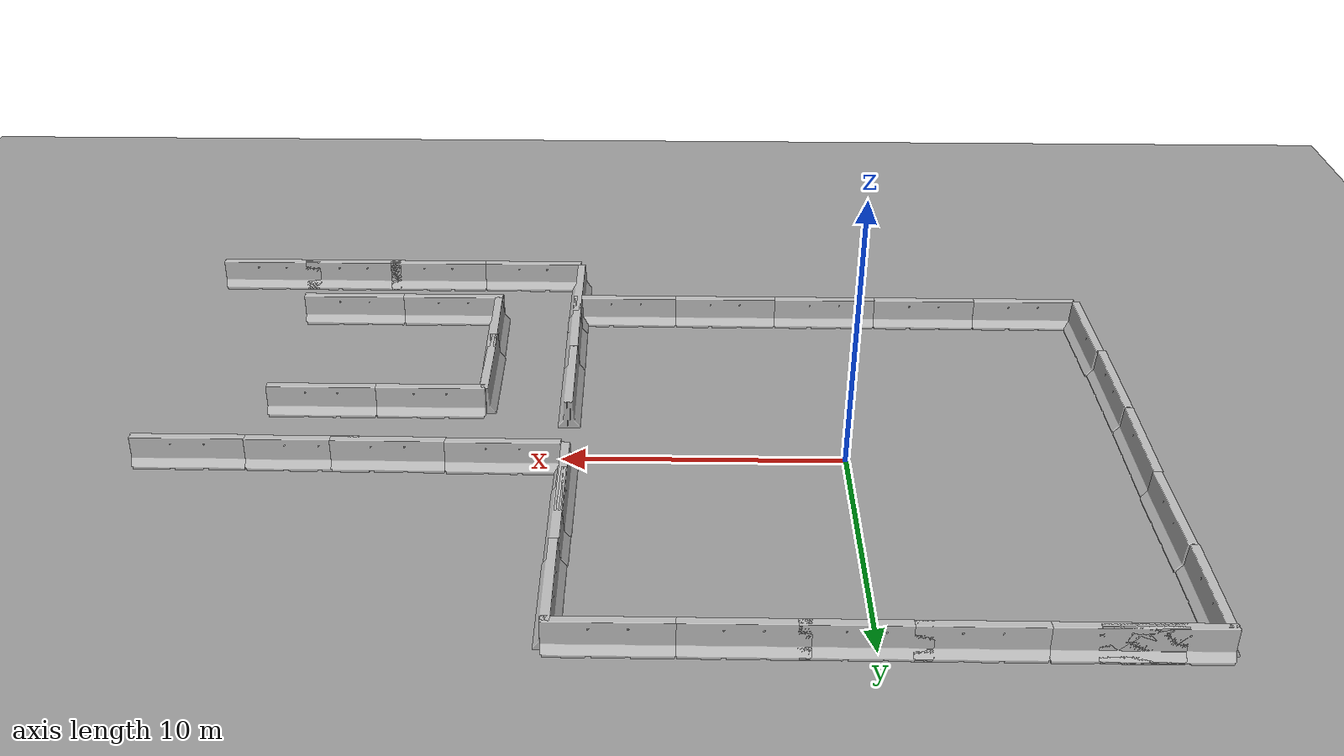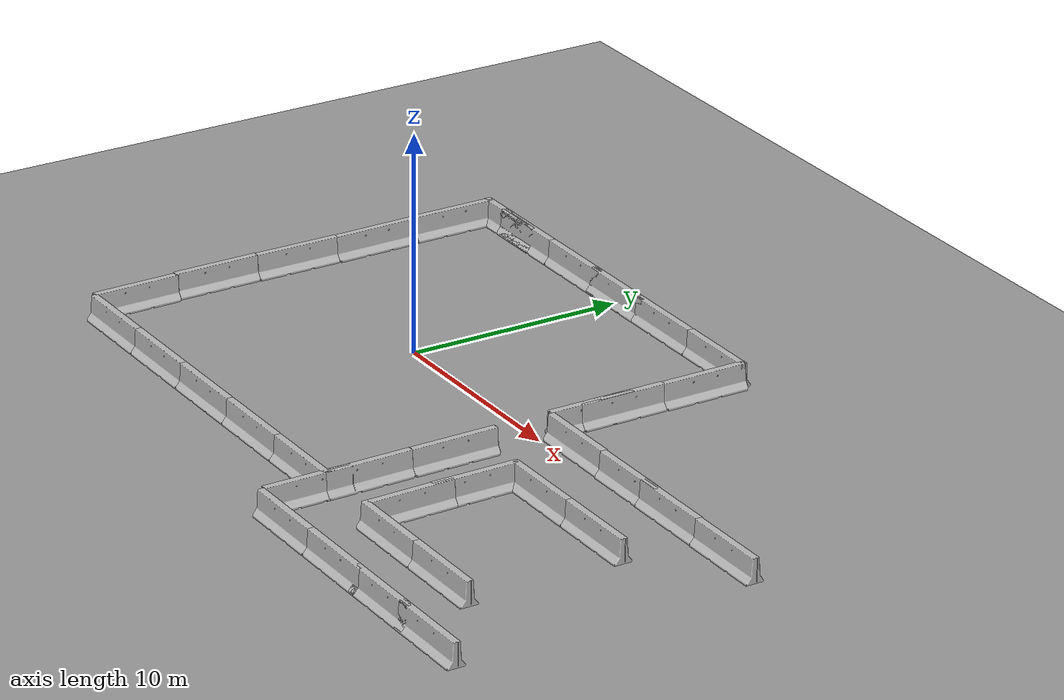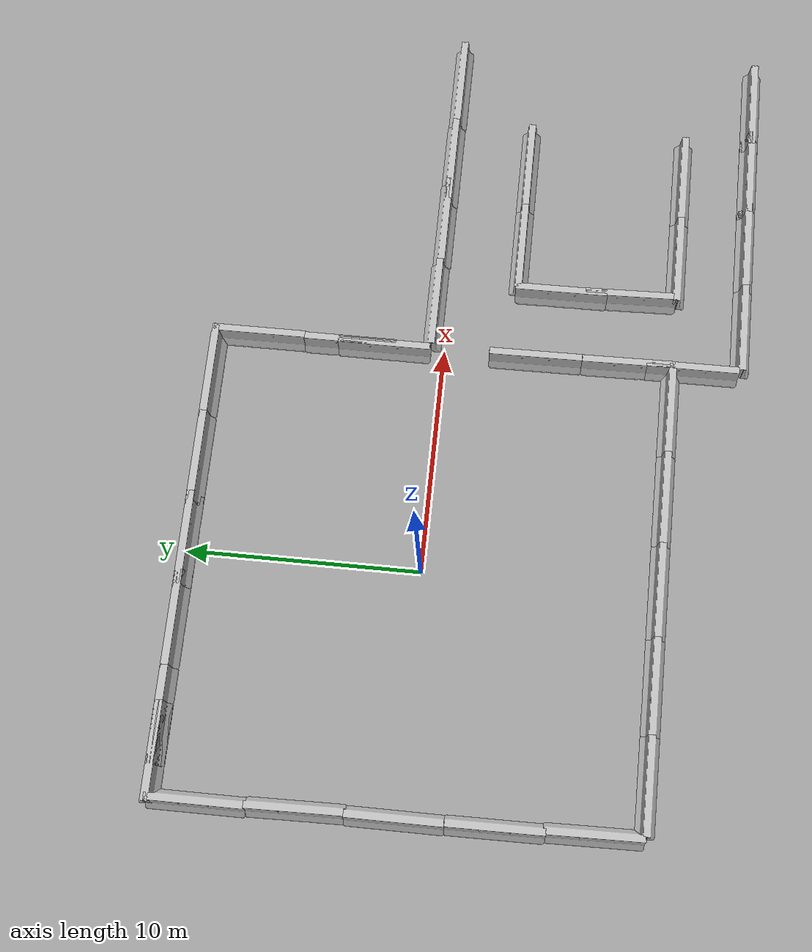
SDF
<sdf version="1.4">
 <world name="default">
  <model name="jersey_barrier">
   <static>1</static>
   <link name="link">
    <visual name="visual">
     <geometry><mesh><uri>model://jersey_barrier/meshes/jersey_barrier.dae</uri></mesh></geometry>
    </visual>
    <collision name="upright">
     <pose>0 0 0.5715 0 -0 0</pose>
     <geometry><box><size>4.06542 0.3063 1.143</size></box></geometry>
    </collision>
    <collision name="base">
     <pose>0 0 0.032258 0 -0 0</pose>
     <geometry><box><size>4.06542 0.8107 0.064516</size></box></geometry>
    </collision>
    <collision name="base2">
     <pose>0 0 0.1 0 -0 0</pose>
     <geometry><box><size>4.06542 0.65 0.1</size></box></geometry>
    </collision>
    <collision name="base3">
     <pose>0 0 0.2 0 -0 0</pose>
     <geometry><box><size>4.06542 0.5 0.1</size></box></geometry>
    </collision>
    <collision name="left-angle">
     <pose>0 -0.224 0.2401 0.9 -0 0</pose>
     <geometry><box><size>4.06542 0.5 0.064516</size></box></geometry>
    </collision>
    <collision name="right-angle">
     <pose>0 0.224 0.2401 -0.9 0 0</pose>
     <geometry><box><size>4.06542 0.5 0.064516</size></box></geometry>
    </collision>
    <velocity_decay><linear>0</linear><angular>0</angular></velocity_decay>
   </link>
   <pose>-10.1123 -7.95933 0 0 0 -1.55782</pose>
  </model>
  <model name="ground_plane_0">
   <static>1</static>
   <link name="link">
    <collision name="collision">
     <geometry><plane><normal>0 0 1</normal><size>100 100</size></plane></geometry>
     <surface><friction><ode><mu>100</mu><mu2>50</mu2></ode></friction></surface>
    </collision>
    <visual name="visual">
     <cast_shadows>0</cast_shadows>
     <geometry><plane><normal>0 0 1</normal><size>100 100</size></plane></geometry>
     <material>
      <script><uri>file://media/materials/scripts/gazebo.material</uri><name>Gazebo/Grey</name></script>
     </material>
    </visual>
    <velocity_decay><linear>0</linear><angular>0</angular></velocity_decay>
   </link>
   <pose>0.497681 0 0 0 -0 0</pose>
  </model>
  <model name="jersey_barrier_0">
   <static>1</static>
   <link name="link">
    <visual name="visual">
     <geometry><mesh><uri>model://jersey_barrier/meshes/jersey_barrier.dae</uri></mesh></geometry>
    </visual>
    <collision name="upright">
     <pose>0 0 0.5715 0 -0 0</pose>
     <geometry><box><size>4.06542 0.3063 1.143</size></box></geometry>
    </collision>
    <collision name="base">
     <pose>0 0 0.032258 0 -0 0</pose>
     <geometry><box><size>4.06542 0.8107 0.064516</size></box></geometry>
    </collision>
    <collision name="base2">
     <pose>0 0 0.1 0 -0 0</pose>
     <geometry><box><size>4.06542 0.65 0.1</size></box></geometry>
    </collision>
    <collision name="base3">
     <pose>0 0 0.2 0 -0 0</pose>
     <geometry><box><size>4.06542 0.5 0.1</size></box></geometry>
    </collision>
    <collision name="left-angle">
     <pose>0 -0.224 0.2401 0.9 -0 0</pose>
     <geometry><box><size>4.06542 0.5 0.064516</size></box></geometry>
    </collision>
    <collision name="right-angle">
     <pose>0 0.224 0.2401 -0.9 0 0</pose>
     <geometry><box><size>4.06542 0.5 0.064516</size></box></geometry>
    </collision>
    <velocity_decay><linear>0</linear><angular>0</angular></velocity_decay>
   </link>
   <pose>-10.2064 -3.99 0.02669 0 0 -1.56734</pose>
  </model>
  <model name="jersey_barrier_1">
   <static>1</static>
   <link name="link">
    <visual name="visual">
     <geometry><mesh><uri>model://jersey_barrier/meshes/jersey_barrier.dae</uri></mesh></geometry>
    </visual>
    <collision name="upright">
     <pose>0 0 0.5715 0 -0 0</pose>
     <geometry><box><size>4.06542 0.3063 1.143</size></box></geometry>
    </collision>
    <collision name="base">
     <pose>0 0 0.032258 0 -0 0</pose>
     <geometry><box><size>4.06542 0.8107 0.064516</size></box></geometry>
    </collision>
    <collision name="base2">
     <pose>0 0 0.1 0 -0 0</pose>
     <geometry><box><size>4.06542 0.65 0.1</size></box></geometry>
    </collision>
    <collision name="base3">
     <pose>0 0 0.2 0 -0 0</pose>
     <geometry><box><size>4.06542 0.5 0.1</size></box></geometry>
    </collision>
    <collision name="left-angle">
     <pose>0 -0.224 0.2401 0.9 -0 0</pose>
     <geometry><box><size>4.06542 0.5 0.064516</size></box></geometry>
    </collision>
    <collision name="right-angle">
     <pose>0 0.224 0.2401 -0.9 0 0</pose>
     <geometry><box><size>4.06542 0.5 0.064516</size></box></geometry>
    </collision>
    <velocity_decay><linear>0</linear><angular>0</angular></velocity_decay>
   </link>
   <pose>-10.2248 0.051346 0 0 0 -1.57545</pose>
  </model>
  <model name="jersey_barrier_2">
   <static>1</static>
   <link name="link">
    <visual name="visual">
     <geometry><mesh><uri>model://jersey_barrier/meshes/jersey_barrier.dae</uri></mesh></geometry>
    </visual>
    <collision name="upright">
     <pose>0 0 0.5715 0 -0 0</pose>
     <geometry><box><size>4.06542 0.3063 1.143</size></box></geometry>
    </collision>
    <collision name="base">
     <pose>0 0 0.032258 0 -0 0</pose>
     <geometry><box><size>4.06542 0.8107 0.064516</size></box></geometry>
    </collision>
    <collision name="base2">
     <pose>0 0 0.1 0 -0 0</pose>
     <geometry><box><size>4.06542 0.65 0.1</size></box></geometry>
    </collision>
    <collision name="base3">
     <pose>0 0 0.2 0 -0 0</pose>
     <geometry><box><size>4.06542 0.5 0.1</size></box></geometry>
    </collision>
    <collision name="left-angle">
     <pose>0 -0.224 0.2401 0.9 -0 0</pose>
     <geometry><box><size>4.06542 0.5 0.064516</size></box></geometry>
    </collision>
    <collision name="right-angle">
     <pose>0 0.224 0.2401 -0.9 0 0</pose>
     <geometry><box><size>4.06542 0.5 0.064516</size></box></geometry>
    </collision>
    <velocity_decay><linear>0</linear><angular>0</angular></velocity_decay>
   </link>
   <pose>-10.2081 4.04852 0 0 0 -1.55769</pose>
  </model>
  <model name="jersey_barrier_3">
   <static>1</static>
   <link name="link">
    <visual name="visual">
     <geometry><mesh><uri>model://jersey_barrier/meshes/jersey_barrier.dae</uri></mesh></geometry>
    </visual>
    <collision name="upright">
     <pose>0 0 0.5715 0 -0 0</pose>
     <geometry><box><size>4.06542 0.3063 1.143</size></box></geometry>
    </collision>
    <collision name="base">
     <pose>0 0 0.032258 0 -0 0</pose>
     <geometry><box><size>4.06542 0.8107 0.064516</size></box></geometry>
    </collision>
    <collision name="base2">
     <pose>0 0 0.1 0 -0 0</pose>
     <geometry><box><size>4.06542 0.65 0.1</size></box></geometry>
    </collision>
    <collision name="base3">
     <pose>0 0 0.2 0 -0 0</pose>
     <geometry><box><size>4.06542 0.5 0.1</size></box></geometry>
    </collision>
    <collision name="left-angle">
     <pose>0 -0.224 0.2401 0.9 -0 0</pose>
     <geometry><box><size>4.06542 0.5 0.064516</size></box></geometry>
    </collision>
    <collision name="right-angle">
     <pose>0 0.224 0.2401 -0.9 0 0</pose>
     <geometry><box><size>4.06542 0.5 0.064516</size></box></geometry>
    </collision>
    <velocity_decay><linear>0</linear><angular>0</angular></velocity_decay>
   </link>
   <pose>-10.2743 8.06249 0 0 -0 1.56778</pose>
  </model>
  <model name="jersey_barrier_4">
   <static>1</static>
   <link name="link">
    <visual name="visual">
     <geometry><mesh><uri>model://jersey_barrier/meshes/jersey_barrier.dae</uri></mesh></geometry>
    </visual>
    <collision name="upright">
     <pose>0 0 0.5715 0 -0 0</pose>
     <geometry><box><size>4.06542 0.3063 1.143</size></box></geometry>
    </collision>
    <collision name="base">
     <pose>0 0 0.032258 0 -0 0</pose>
     <geometry><box><size>4.06542 0.8107 0.064516</size></box></geometry>
    </collision>
    <collision name="base2">
     <pose>0 0 0.1 0 -0 0</pose>
     <geometry><box><size>4.06542 0.65 0.1</size></box></geometry>
    </collision>
    <collision name="base3">
     <pose>0 0 0.2 0 -0 0</pose>
     <geometry><box><size>4.06542 0.5 0.1</size></box></geometry>
    </collision>
    <collision name="left-angle">
     <pose>0 -0.224 0.2401 0.9 -0 0</pose>
     <geometry><box><size>4.06542 0.5 0.064516</size></box></geometry>
    </collision>
    <collision name="right-angle">
     <pose>0 0.224 0.2401 -0.9 0 0</pose>
     <geometry><box><size>4.06542 0.5 0.064516</size></box></geometry>
    </collision>
    <velocity_decay><linear>0</linear><angular>0</angular></velocity_decay>
   </link>
   <pose>-8 -10 0 0 -0 0</pose>
  </model>
  <model name="jersey_barrier_5">
   <static>1</static>
   <link name="link">
    <visual name="visual">
     <geometry><mesh><uri>model://jersey_barrier/meshes/jersey_barrier.dae</uri></mesh></geometry>
    </visual>
    <collision name="upright">
     <pose>0 0 0.5715 0 -0 0</pose>
     <geometry><box><size>4.06542 0.3063 1.143</size></box></geometry>
    </collision>
    <collision name="base">
     <pose>0 0 0.032258 0 -0 0</pose>
     <geometry><box><size>4.06542 0.8107 0.064516</size></box></geometry>
    </collision>
    <collision name="base2">
     <pose>0 0 0.1 0 -0 0</pose>
     <geometry><box><size>4.06542 0.65 0.1</size></box></geometry>
    </collision>
    <collision name="base3">
     <pose>0 0 0.2 0 -0 0</pose>
     <geometry><box><size>4.06542 0.5 0.1</size></box></geometry>
    </collision>
    <collision name="left-angle">
     <pose>0 -0.224 0.2401 0.9 -0 0</pose>
     <geometry><box><size>4.06542 0.5 0.064516</size></box></geometry>
    </collision>
    <collision name="right-angle">
     <pose>0 0.224 0.2401 -0.9 0 0</pose>
     <geometry><box><size>4.06542 0.5 0.064516</size></box></geometry>
    </collision>
    <velocity_decay><linear>0</linear><angular>0</angular></velocity_decay>
   </link>
   <pose>-4 -10 0 0 -0 0</pose>
  </model>
  <model name="jersey_barrier_6">
   <static>1</static>
   <link name="link">
    <visual name="visual">
     <geometry><mesh><uri>model://jersey_barrier/meshes/jersey_barrier.dae</uri></mesh></geometry>
    </visual>
    <collision name="upright">
     <pose>0 0 0.5715 0 -0 0</pose>
     <geometry><box><size>4.06542 0.3063 1.143</size></box></geometry>
    </collision>
    <collision name="base">
     <pose>0 0 0.032258 0 -0 0</pose>
     <geometry><box><size>4.06542 0.8107 0.064516</size></box></geometry>
    </collision>
    <collision name="base2">
     <pose>0 0 0.1 0 -0 0</pose>
     <geometry><box><size>4.06542 0.65 0.1</size></box></geometry>
    </collision>
    <collision name="base3">
     <pose>0 0 0.2 0 -0 0</pose>
     <geometry><box><size>4.06542 0.5 0.1</size></box></geometry>
    </collision>
    <collision name="left-angle">
     <pose>0 -0.224 0.2401 0.9 -0 0</pose>
     <geometry><box><size>4.06542 0.5 0.064516</size></box></geometry>
    </collision>
    <collision name="right-angle">
     <pose>0 0.224 0.2401 -0.9 0 0</pose>
     <geometry><box><size>4.06542 0.5 0.064516</size></box></geometry>
    </collision>
    <velocity_decay><linear>0</linear><angular>0</angular></velocity_decay>
   </link>
   <pose>0 -10 0 0 -0 0</pose>
  </model>
  <model name="jersey_barrier_7">
   <static>1</static>
   <link name="link">
    <visual name="visual">
     <geometry><mesh><uri>model://jersey_barrier/meshes/jersey_barrier.dae</uri></mesh></geometry>
    </visual>
    <collision name="upright">
     <pose>0 0 0.5715 0 -0 0</pose>
     <geometry><box><size>4.06542 0.3063 1.143</size></box></geometry>
    </collision>
    <collision name="base">
     <pose>0 0 0.032258 0 -0 0</pose>
     <geometry><box><size>4.06542 0.8107 0.064516</size></box></geometry>
    </collision>
    <collision name="base2">
     <pose>0 0 0.1 0 -0 0</pose>
     <geometry><box><size>4.06542 0.65 0.1</size></box></geometry>
    </collision>
    <collision name="base3">
     <pose>0 0 0.2 0 -0 0</pose>
     <geometry><box><size>4.06542 0.5 0.1</size></box></geometry>
    </collision>
    <collision name="left-angle">
     <pose>0 -0.224 0.2401 0.9 -0 0</pose>
     <geometry><box><size>4.06542 0.5 0.064516</size></box></geometry>
    </collision>
    <collision name="right-angle">
     <pose>0 0.224 0.2401 -0.9 0 0</pose>
     <geometry><box><size>4.06542 0.5 0.064516</size></box></geometry>
    </collision>
    <velocity_decay><linear>0</linear><angular>0</angular></velocity_decay>
   </link>
   <pose>4 -10 0 0 -0 0</pose>
  </model>
  <model name="jersey_barrier_8">
   <static>1</static>
   <link name="link">
    <visual name="visual">
     <geometry><mesh><uri>model://jersey_barrier/meshes/jersey_barrier.dae</uri></mesh></geometry>
    </visual>
    <collision name="upright">
     <pose>0 0 0.5715 0 -0 0</pose>
     <geometry><box><size>4.06542 0.3063 1.143</size></box></geometry>
    </collision>
    <collision name="base">
     <pose>0 0 0.032258 0 -0 0</pose>
     <geometry><box><size>4.06542 0.8107 0.064516</size></box></geometry>
    </collision>
    <collision name="base2">
     <pose>0 0 0.1 0 -0 0</pose>
     <geometry><box><size>4.06542 0.65 0.1</size></box></geometry>
    </collision>
    <collision name="base3">
     <pose>0 0 0.2 0 -0 0</pose>
     <geometry><box><size>4.06542 0.5 0.1</size></box></geometry>
    </collision>
    <collision name="left-angle">
     <pose>0 -0.224 0.2401 0.9 -0 0</pose>
     <geometry><box><size>4.06542 0.5 0.064516</size></box></geometry>
    </collision>
    <collision name="right-angle">
     <pose>0 0.224 0.2401 -0.9 0 0</pose>
     <geometry><box><size>4.06542 0.5 0.064516</size></box></geometry>
    </collision>
    <velocity_decay><linear>0</linear><angular>0</angular></velocity_decay>
   </link>
   <pose>8 -10 0 0 -0 0</pose>
  </model>
  <model name="jersey_barrier_9">
   <static>1</static>
   <link name="link">
    <visual name="visual">
     <geometry><mesh><uri>model://jersey_barrier/meshes/jersey_barrier.dae</uri></mesh></geometry>
    </visual>
    <collision name="upright">
     <pose>0 0 0.5715 0 -0 0</pose>
     <geometry><box><size>4.06542 0.3063 1.143</size></box></geometry>
    </collision>
    <collision name="base">
     <pose>0 0 0.032258 0 -0 0</pose>
     <geometry><box><size>4.06542 0.8107 0.064516</size></box></geometry>
    </collision>
    <collision name="base2">
     <pose>0 0 0.1 0 -0 0</pose>
     <geometry><box><size>4.06542 0.65 0.1</size></box></geometry>
    </collision>
    <collision name="base3">
     <pose>0 0 0.2 0 -0 0</pose>
     <geometry><box><size>4.06542 0.5 0.1</size></box></geometry>
    </collision>
    <collision name="left-angle">
     <pose>0 -0.224 0.2401 0.9 -0 0</pose>
     <geometry><box><size>4.06542 0.5 0.064516</size></box></geometry>
    </collision>
    <collision name="right-angle">
     <pose>0 0.224 0.2401 -0.9 0 0</pose>
     <geometry><box><size>4.06542 0.5 0.064516</size></box></geometry>
    </collision>
    <velocity_decay><linear>0</linear><angular>0</angular></velocity_decay>
   </link>
   <pose>9.92231 -8.06434 0 0 0 -1.55766</pose>
  </model>
  <model name="jersey_barrier_10">
   <static>1</static>
   <link name="link">
    <visual name="visual">
     <geometry><mesh><uri>model://jersey_barrier/meshes/jersey_barrier.dae</uri></mesh></geometry>
    </visual>
    <collision name="upright">
     <pose>0 0 0.5715 0 -0 0</pose>
     <geometry><box><size>4.06542 0.3063 1.143</size></box></geometry>
    </collision>
    <collision name="base">
     <pose>0 0 0.032258 0 -0 0</pose>
     <geometry><box><size>4.06542 0.8107 0.064516</size></box></geometry>
    </collision>
    <collision name="base2">
     <pose>0 0 0.1 0 -0 0</pose>
     <geometry><box><size>4.06542 0.65 0.1</size></box></geometry>
    </collision>
    <collision name="base3">
     <pose>0 0 0.2 0 -0 0</pose>
     <geometry><box><size>4.06542 0.5 0.1</size></box></geometry>
    </collision>
    <collision name="left-angle">
     <pose>0 -0.224 0.2401 0.9 -0 0</pose>
     <geometry><box><size>4.06542 0.5 0.064516</size></box></geometry>
    </collision>
    <collision name="right-angle">
     <pose>0 0.224 0.2401 -0.9 0 0</pose>
     <geometry><box><size>4.06542 0.5 0.064516</size></box></geometry>
    </collision>
    <velocity_decay><linear>0</linear><angular>0</angular></velocity_decay>
   </link>
   <pose>9.88698 -4.02592 0 0 -0 1.57868</pose>
  </model>
  <model name="jersey_barrier_11">
   <static>1</static>
   <link name="link">
    <visual name="visual">
     <geometry><mesh><uri>model://jersey_barrier/meshes/jersey_barrier.dae</uri></mesh></geometry>
    </visual>
    <collision name="upright">
     <pose>0 0 0.5715 0 -0 0</pose>
     <geometry><box><size>4.06542 0.3063 1.143</size></box></geometry>
    </collision>
    <collision name="base">
     <pose>0 0 0.032258 0 -0 0</pose>
     <geometry><box><size>4.06542 0.8107 0.064516</size></box></geometry>
    </collision>
    <collision name="base2">
     <pose>0 0 0.1 0 -0 0</pose>
     <geometry><box><size>4.06542 0.65 0.1</size></box></geometry>
    </collision>
    <collision name="base3">
     <pose>0 0 0.2 0 -0 0</pose>
     <geometry><box><size>4.06542 0.5 0.1</size></box></geometry>
    </collision>
    <collision name="left-angle">
     <pose>0 -0.224 0.2401 0.9 -0 0</pose>
     <geometry><box><size>4.06542 0.5 0.064516</size></box></geometry>
    </collision>
    <collision name="right-angle">
     <pose>0 0.224 0.2401 -0.9 0 0</pose>
     <geometry><box><size>4.06542 0.5 0.064516</size></box></geometry>
    </collision>
    <velocity_decay><linear>0</linear><angular>0</angular></velocity_decay>
   </link>
   <pose>9.81563 2.6045 0 0 0 -1.57159</pose>
  </model>
  <model name="jersey_barrier_12">
   <static>1</static>
   <link name="link">
    <visual name="visual">
     <geometry><mesh><uri>model://jersey_barrier/meshes/jersey_barrier.dae</uri></mesh></geometry>
    </visual>
    <collision name="upright">
     <pose>0 0 0.5715 0 -0 0</pose>
     <geometry><box><size>4.06542 0.3063 1.143</size></box></geometry>
    </collision>
    <collision name="base">
     <pose>0 0 0.032258 0 -0 0</pose>
     <geometry><box><size>4.06542 0.8107 0.064516</size></box></geometry>
    </collision>
    <collision name="base2">
     <pose>0 0 0.1 0 -0 0</pose>
     <geometry><box><size>4.06542 0.65 0.1</size></box></geometry>
    </collision>
    <collision name="base3">
     <pose>0 0 0.2 0 -0 0</pose>
     <geometry><box><size>4.06542 0.5 0.1</size></box></geometry>
    </collision>
    <collision name="left-angle">
     <pose>0 -0.224 0.2401 0.9 -0 0</pose>
     <geometry><box><size>4.06542 0.5 0.064516</size></box></geometry>
    </collision>
    <collision name="right-angle">
     <pose>0 0.224 0.2401 -0.9 0 0</pose>
     <geometry><box><size>4.06542 0.5 0.064516</size></box></geometry>
    </collision>
    <velocity_decay><linear>0</linear><angular>0</angular></velocity_decay>
   </link>
   <pose>9.8385 4.09189 0 0 0 -1.57013</pose>
  </model>
  <model name="jersey_barrier_13">
   <static>1</static>
   <link name="link">
    <visual name="visual">
     <geometry><mesh><uri>model://jersey_barrier/meshes/jersey_barrier.dae</uri></mesh></geometry>
    </visual>
    <collision name="upright">
     <pose>0 0 0.5715 0 -0 0</pose>
     <geometry><box><size>4.06542 0.3063 1.143</size></box></geometry>
    </collision>
    <collision name="base">
     <pose>0 0 0.032258 0 -0 0</pose>
     <geometry><box><size>4.06542 0.8107 0.064516</size></box></geometry>
    </collision>
    <collision name="base2">
     <pose>0 0 0.1 0 -0 0</pose>
     <geometry><box><size>4.06542 0.65 0.1</size></box></geometry>
    </collision>
    <collision name="base3">
     <pose>0 0 0.2 0 -0 0</pose>
     <geometry><box><size>4.06542 0.5 0.1</size></box></geometry>
    </collision>
    <collision name="left-angle">
     <pose>0 -0.224 0.2401 0.9 -0 0</pose>
     <geometry><box><size>4.06542 0.5 0.064516</size></box></geometry>
    </collision>
    <collision name="right-angle">
     <pose>0 0.224 0.2401 -0.9 0 0</pose>
     <geometry><box><size>4.06542 0.5 0.064516</size></box></geometry>
    </collision>
    <velocity_decay><linear>0</linear><angular>0</angular></velocity_decay>
   </link>
   <pose>9.86951 8.08601 0 0 0 -1.56907</pose>
  </model>
  <model name="jersey_barrier_14">
   <static>1</static>
   <link name="link">
    <visual name="visual">
     <geometry><mesh><uri>model://jersey_barrier/meshes/jersey_barrier.dae</uri></mesh></geometry>
    </visual>
    <collision name="upright">
     <pose>0 0 0.5715 0 -0 0</pose>
     <geometry><box><size>4.06542 0.3063 1.143</size></box></geometry>
    </collision>
    <collision name="base">
     <pose>0 0 0.032258 0 -0 0</pose>
     <geometry><box><size>4.06542 0.8107 0.064516</size></box></geometry>
    </collision>
    <collision name="base2">
     <pose>0 0 0.1 0 -0 0</pose>
     <geometry><box><size>4.06542 0.65 0.1</size></box></geometry>
    </collision>
    <collision name="base3">
     <pose>0 0 0.2 0 -0 0</pose>
     <geometry><box><size>4.06542 0.5 0.1</size></box></geometry>
    </collision>
    <collision name="left-angle">
     <pose>0 -0.224 0.2401 0.9 -0 0</pose>
     <geometry><box><size>4.06542 0.5 0.064516</size></box></geometry>
    </collision>
    <collision name="right-angle">
     <pose>0 0.224 0.2401 -0.9 0 0</pose>
     <geometry><box><size>4.06542 0.5 0.064516</size></box></geometry>
    </collision>
    <velocity_decay><linear>0</linear><angular>0</angular></velocity_decay>
   </link>
   <pose>8 10 0 0 -0 0</pose>
  </model>
  <model name="jersey_barrier_15">
   <static>1</static>
   <link name="link">
    <visual name="visual">
     <geometry><mesh><uri>model://jersey_barrier/meshes/jersey_barrier.dae</uri></mesh></geometry>
    </visual>
    <collision name="upright">
     <pose>0 0 0.5715 0 -0 0</pose>
     <geometry><box><size>4.06542 0.3063 1.143</size></box></geometry>
    </collision>
    <collision name="base">
     <pose>0 0 0.032258 0 -0 0</pose>
     <geometry><box><size>4.06542 0.8107 0.064516</size></box></geometry>
    </collision>
    <collision name="base2">
     <pose>0 0 0.1 0 -0 0</pose>
     <geometry><box><size>4.06542 0.65 0.1</size></box></geometry>
    </collision>
    <collision name="base3">
     <pose>0 0 0.2 0 -0 0</pose>
     <geometry><box><size>4.06542 0.5 0.1</size></box></geometry>
    </collision>
    <collision name="left-angle">
     <pose>0 -0.224 0.2401 0.9 -0 0</pose>
     <geometry><box><size>4.06542 0.5 0.064516</size></box></geometry>
    </collision>
    <collision name="right-angle">
     <pose>0 0.224 0.2401 -0.9 0 0</pose>
     <geometry><box><size>4.06542 0.5 0.064516</size></box></geometry>
    </collision>
    <velocity_decay><linear>0</linear><angular>0</angular></velocity_decay>
   </link>
   <pose>4 10 0 0 -0 0</pose>
  </model>
  <model name="jersey_barrier_16">
   <static>1</static>
   <link name="link">
    <visual name="visual">
     <geometry><mesh><uri>model://jersey_barrier/meshes/jersey_barrier.dae</uri></mesh></geometry>
    </visual>
    <collision name="upright">
     <pose>0 0 0.5715 0 -0 0</pose>
     <geometry><box><size>4.06542 0.3063 1.143</size></box></geometry>
    </collision>
    <collision name="base">
     <pose>0 0 0.032258 0 -0 0</pose>
     <geometry><box><size>4.06542 0.8107 0.064516</size></box></geometry>
    </collision>
    <collision name="base2">
     <pose>0 0 0.1 0 -0 0</pose>
     <geometry><box><size>4.06542 0.65 0.1</size></box></geometry>
    </collision>
    <collision name="base3">
     <pose>0 0 0.2 0 -0 0</pose>
     <geometry><box><size>4.06542 0.5 0.1</size></box></geometry>
    </collision>
    <collision name="left-angle">
     <pose>0 -0.224 0.2401 0.9 -0 0</pose>
     <geometry><box><size>4.06542 0.5 0.064516</size></box></geometry>
    </collision>
    <collision name="right-angle">
     <pose>0 0.224 0.2401 -0.9 0 0</pose>
     <geometry><box><size>4.06542 0.5 0.064516</size></box></geometry>
    </collision>
    <velocity_decay><linear>0</linear><angular>0</angular></velocity_decay>
   </link>
   <pose>0.403632 10 0 0 -0 0</pose>
  </model>
  <model name="jersey_barrier_17">
   <static>1</static>
   <link name="link">
    <visual name="visual">
     <geometry><mesh><uri>model://jersey_barrier/meshes/jersey_barrier.dae</uri></mesh></geometry>
    </visual>
    <collision name="upright">
     <pose>0 0 0.5715 0 -0 0</pose>
     <geometry><box><size>4.06542 0.3063 1.143</size></box></geometry>
    </collision>
    <collision name="base">
     <pose>0 0 0.032258 0 -0 0</pose>
     <geometry><box><size>4.06542 0.8107 0.064516</size></box></geometry>
    </collision>
    <collision name="base2">
     <pose>0 0 0.1 0 -0 0</pose>
     <geometry><box><size>4.06542 0.65 0.1</size></box></geometry>
    </collision>
    <collision name="base3">
     <pose>0 0 0.2 0 -0 0</pose>
     <geometry><box><size>4.06542 0.5 0.1</size></box></geometry>
    </collision>
    <collision name="left-angle">
     <pose>0 -0.224 0.2401 0.9 -0 0</pose>
     <geometry><box><size>4.06542 0.5 0.064516</size></box></geometry>
    </collision>
    <collision name="right-angle">
     <pose>0 0.224 0.2401 -0.9 0 0</pose>
     <geometry><box><size>4.06542 0.5 0.064516</size></box></geometry>
    </collision>
    <velocity_decay><linear>0</linear><angular>0</angular></velocity_decay>
   </link>
   <pose>-3 10 0 0 -0 0</pose>
  </model>
  <model name="jersey_barrier_18">
   <static>1</static>
   <link name="link">
    <visual name="visual">
     <geometry><mesh><uri>model://jersey_barrier/meshes/jersey_barrier.dae</uri></mesh></geometry>
    </visual>
    <collision name="upright">
     <pose>0 0 0.5715 0 -0 0</pose>
     <geometry><box><size>4.06542 0.3063 1.143</size></box></geometry>
    </collision>
    <collision name="base">
     <pose>0 0 0.032258 0 -0 0</pose>
     <geometry><box><size>4.06542 0.8107 0.064516</size></box></geometry>
    </collision>
    <collision name="base2">
     <pose>0 0 0.1 0 -0 0</pose>
     <geometry><box><size>4.06542 0.65 0.1</size></box></geometry>
    </collision>
    <collision name="base3">
     <pose>0 0 0.2 0 -0 0</pose>
     <geometry><box><size>4.06542 0.5 0.1</size></box></geometry>
    </collision>
    <collision name="left-angle">
     <pose>0 -0.224 0.2401 0.9 -0 0</pose>
     <geometry><box><size>4.06542 0.5 0.064516</size></box></geometry>
    </collision>
    <collision name="right-angle">
     <pose>0 0.224 0.2401 -0.9 0 0</pose>
     <geometry><box><size>4.06542 0.5 0.064516</size></box></geometry>
    </collision>
    <velocity_decay><linear>0</linear><angular>0</angular></velocity_decay>
   </link>
   <pose>-7 10 0 0 -0 0</pose>
  </model>
  <model name="jersey_barrier_19">
   <static>1</static>
   <link name="link">
    <visual name="visual">
     <geometry><mesh><uri>model://jersey_barrier/meshes/jersey_barrier.dae</uri></mesh></geometry>
    </visual>
    <collision name="upright">
     <pose>0 0 0.5715 0 -0 0</pose>
     <geometry><box><size>4.06542 0.3063 1.143</size></box></geometry>
    </collision>
    <collision name="base">
     <pose>0 0 0.032258 0 -0 0</pose>
     <geometry><box><size>4.06542 0.8107 0.064516</size></box></geometry>
    </collision>
    <collision name="base2">
     <pose>0 0 0.1 0 -0 0</pose>
     <geometry><box><size>4.06542 0.65 0.1</size></box></geometry>
    </collision>
    <collision name="base3">
     <pose>0 0 0.2 0 -0 0</pose>
     <geometry><box><size>4.06542 0.5 0.1</size></box></geometry>
    </collision>
    <collision name="left-angle">
     <pose>0 -0.224 0.2401 0.9 -0 0</pose>
     <geometry><box><size>4.06542 0.5 0.064516</size></box></geometry>
    </collision>
    <collision name="right-angle">
     <pose>0 0.224 0.2401 -0.9 0 0</pose>
     <geometry><box><size>4.06542 0.5 0.064516</size></box></geometry>
    </collision>
    <velocity_decay><linear>0</linear><angular>0</angular></velocity_decay>
   </link>
   <pose>-8.44367 10 0 0 -0 0</pose>
  </model>
  <model name="jersey_barrier_20">
   <static>1</static>
   <link name="link">
    <visual name="visual">
     <geometry><mesh><uri>model://jersey_barrier/meshes/jersey_barrier.dae</uri></mesh></geometry>
    </visual>
    <collision name="upright">
     <pose>0 0 0.5715 0 -0 0</pose>
     <geometry><box><size>4.06542 0.3063 1.143</size></box></geometry>
    </collision>
    <collision name="base">
     <pose>0 0 0.032258 0 -0 0</pose>
     <geometry><box><size>4.06542 0.8107 0.064516</size></box></geometry>
    </collision>
    <collision name="base2">
     <pose>0 0 0.1 0 -0 0</pose>
     <geometry><box><size>4.06542 0.65 0.1</size></box></geometry>
    </collision>
    <collision name="base3">
     <pose>0 0 0.2 0 -0 0</pose>
     <geometry><box><size>4.06542 0.5 0.1</size></box></geometry>
    </collision>
    <collision name="left-angle">
     <pose>0 -0.224 0.2401 0.9 -0 0</pose>
     <geometry><box><size>4.06542 0.5 0.064516</size></box></geometry>
    </collision>
    <collision name="right-angle">
     <pose>0 0.224 0.2401 -0.9 0 0</pose>
     <geometry><box><size>4.06542 0.5 0.064516</size></box></geometry>
    </collision>
    <velocity_decay><linear>0</linear><angular>0</angular></velocity_decay>
   </link>
   <pose>12 0.56338 0 0 -0 0</pose>
  </model>
  <model name="jersey_barrier_21">
   <static>1</static>
   <link name="link">
    <visual name="visual">
     <geometry><mesh><uri>model://jersey_barrier/meshes/jersey_barrier.dae</uri></mesh></geometry>
    </visual>
    <collision name="upright">
     <pose>0 0 0.5715 0 -0 0</pose>
     <geometry><box><size>4.06542 0.3063 1.143</size></box></geometry>
    </collision>
    <collision name="base">
     <pose>0 0 0.032258 0 -0 0</pose>
     <geometry><box><size>4.06542 0.8107 0.064516</size></box></geometry>
    </collision>
    <collision name="base2">
     <pose>0 0 0.1 0 -0 0</pose>
     <geometry><box><size>4.06542 0.65 0.1</size></box></geometry>
    </collision>
    <collision name="base3">
     <pose>0 0 0.2 0 -0 0</pose>
     <geometry><box><size>4.06542 0.5 0.1</size></box></geometry>
    </collision>
    <collision name="left-angle">
     <pose>0 -0.224 0.2401 0.9 -0 0</pose>
     <geometry><box><size>4.06542 0.5 0.064516</size></box></geometry>
    </collision>
    <collision name="right-angle">
     <pose>0 0.224 0.2401 -0.9 0 0</pose>
     <geometry><box><size>4.06542 0.5 0.064516</size></box></geometry>
    </collision>
    <velocity_decay><linear>0</linear><angular>0</angular></velocity_decay>
   </link>
   <pose>9.93733 -10.8544 0 0 0 -1.56858</pose>
  </model>
  <model name="jersey_barrier_22">
   <static>1</static>
   <link name="link">
    <visual name="visual">
     <geometry><mesh><uri>model://jersey_barrier/meshes/jersey_barrier.dae</uri></mesh></geometry>
    </visual>
    <collision name="upright">
     <pose>0 0 0.5715 0 -0 0</pose>
     <geometry><box><size>4.06542 0.3063 1.143</size></box></geometry>
    </collision>
    <collision name="base">
     <pose>0 0 0.032258 0 -0 0</pose>
     <geometry><box><size>4.06542 0.8107 0.064516</size></box></geometry>
    </collision>
    <collision name="base2">
     <pose>0 0 0.1 0 -0 0</pose>
     <geometry><box><size>4.06542 0.65 0.1</size></box></geometry>
    </collision>
    <collision name="base3">
     <pose>0 0 0.2 0 -0 0</pose>
     <geometry><box><size>4.06542 0.5 0.1</size></box></geometry>
    </collision>
    <collision name="left-angle">
     <pose>0 -0.224 0.2401 0.9 -0 0</pose>
     <geometry><box><size>4.06542 0.5 0.064516</size></box></geometry>
    </collision>
    <collision name="right-angle">
     <pose>0 0.224 0.2401 -0.9 0 0</pose>
     <geometry><box><size>4.06542 0.5 0.064516</size></box></geometry>
    </collision>
    <velocity_decay><linear>0</linear><angular>0</angular></velocity_decay>
   </link>
   <pose>12 -13 0 0 -0 0</pose>
  </model>
  <model name="jersey_barrier_23">
   <static>1</static>
   <link name="link">
    <visual name="visual">
     <geometry><mesh><uri>model://jersey_barrier/meshes/jersey_barrier.dae</uri></mesh></geometry>
    </visual>
    <collision name="upright">
     <pose>0 0 0.5715 0 -0 0</pose>
     <geometry><box><size>4.06542 0.3063 1.143</size></box></geometry>
    </collision>
    <collision name="base">
     <pose>0 0 0.032258 0 -0 0</pose>
     <geometry><box><size>4.06542 0.8107 0.064516</size></box></geometry>
    </collision>
    <collision name="base2">
     <pose>0 0 0.1 0 -0 0</pose>
     <geometry><box><size>4.06542 0.65 0.1</size></box></geometry>
    </collision>
    <collision name="base3">
     <pose>0 0 0.2 0 -0 0</pose>
     <geometry><box><size>4.06542 0.5 0.1</size></box></geometry>
    </collision>
    <collision name="left-angle">
     <pose>0 -0.224 0.2401 0.9 -0 0</pose>
     <geometry><box><size>4.06542 0.5 0.064516</size></box></geometry>
    </collision>
    <collision name="right-angle">
     <pose>0 0.224 0.2401 -0.9 0 0</pose>
     <geometry><box><size>4.06542 0.5 0.064516</size></box></geometry>
    </collision>
    <velocity_decay><linear>0</linear><angular>0</angular></velocity_decay>
   </link>
   <pose>16 -13 0 0 -0 0</pose>
  </model>
  <model name="jersey_barrier_24">
   <static>1</static>
   <link name="link">
    <visual name="visual">
     <geometry><mesh><uri>model://jersey_barrier/meshes/jersey_barrier.dae</uri></mesh></geometry>
    </visual>
    <collision name="upright">
     <pose>0 0 0.5715 0 -0 0</pose>
     <geometry><box><size>4.06542 0.3063 1.143</size></box></geometry>
    </collision>
    <collision name="base">
     <pose>0 0 0.032258 0 -0 0</pose>
     <geometry><box><size>4.06542 0.8107 0.064516</size></box></geometry>
    </collision>
    <collision name="base2">
     <pose>0 0 0.1 0 -0 0</pose>
     <geometry><box><size>4.06542 0.65 0.1</size></box></geometry>
    </collision>
    <collision name="base3">
     <pose>0 0 0.2 0 -0 0</pose>
     <geometry><box><size>4.06542 0.5 0.1</size></box></geometry>
    </collision>
    <collision name="left-angle">
     <pose>0 -0.224 0.2401 0.9 -0 0</pose>
     <geometry><box><size>4.06542 0.5 0.064516</size></box></geometry>
    </collision>
    <collision name="right-angle">
     <pose>0 0.224 0.2401 -0.9 0 0</pose>
     <geometry><box><size>4.06542 0.5 0.064516</size></box></geometry>
    </collision>
    <velocity_decay><linear>0</linear><angular>0</angular></velocity_decay>
   </link>
   <pose>19.5928 -13 0 0 -0 0</pose>
  </model>
  <model name="jersey_barrier_25">
   <static>1</static>
   <link name="link">
    <visual name="visual">
     <geometry><mesh><uri>model://jersey_barrier/meshes/jersey_barrier.dae</uri></mesh></geometry>
    </visual>
    <collision name="upright">
     <pose>0 0 0.5715 0 -0 0</pose>
     <geometry><box><size>4.06542 0.3063 1.143</size></box></geometry>
    </collision>
    <collision name="base">
     <pose>0 0 0.032258 0 -0 0</pose>
     <geometry><box><size>4.06542 0.8107 0.064516</size></box></geometry>
    </collision>
    <collision name="base2">
     <pose>0 0 0.1 0 -0 0</pose>
     <geometry><box><size>4.06542 0.65 0.1</size></box></geometry>
    </collision>
    <collision name="base3">
     <pose>0 0 0.2 0 -0 0</pose>
     <geometry><box><size>4.06542 0.5 0.1</size></box></geometry>
    </collision>
    <collision name="left-angle">
     <pose>0 -0.224 0.2401 0.9 -0 0</pose>
     <geometry><box><size>4.06542 0.5 0.064516</size></box></geometry>
    </collision>
    <collision name="right-angle">
     <pose>0 0.224 0.2401 -0.9 0 0</pose>
     <geometry><box><size>4.06542 0.5 0.064516</size></box></geometry>
    </collision>
    <velocity_decay><linear>0</linear><angular>0</angular></velocity_decay>
   </link>
   <pose>23 -13 0 0 -0 0</pose>
  </model>
  <model name="jersey_barrier_37">
   <static>1</static>
   <link name="link">
    <visual name="visual">
     <geometry><mesh><uri>model://jersey_barrier/meshes/jersey_barrier.dae</uri></mesh></geometry>
    </visual>
    <collision name="upright">
     <pose>0 0 0.5715 0 -0 0</pose>
     <geometry><box><size>4.06542 0.3063 1.143</size></box></geometry>
    </collision>
    <collision name="base">
     <pose>0 0 0.032258 0 -0 0</pose>
     <geometry><box><size>4.06542 0.8107 0.064516</size></box></geometry>
    </collision>
    <collision name="base2">
     <pose>0 0 0.1 0 -0 0</pose>
     <geometry><box><size>4.06542 0.65 0.1</size></box></geometry>
    </collision>
    <collision name="base3">
     <pose>0 0 0.2 0 -0 0</pose>
     <geometry><box><size>4.06542 0.5 0.1</size></box></geometry>
    </collision>
    <collision name="left-angle">
     <pose>0 -0.224 0.2401 0.9 -0 0</pose>
     <geometry><box><size>4.06542 0.5 0.064516</size></box></geometry>
    </collision>
    <collision name="right-angle">
     <pose>0 0.224 0.2401 -0.9 0 0</pose>
     <geometry><box><size>4.06542 0.5 0.064516</size></box></geometry>
    </collision>
    <velocity_decay><linear>0</linear><angular>0</angular></velocity_decay>
   </link>
   <pose>16 0.5149 0 0 -0 0</pose>
  </model>
  <model name="jersey_barrier_38">
   <static>1</static>
   <link name="link">
    <visual name="visual">
     <geometry><mesh><uri>model://jersey_barrier/meshes/jersey_barrier.dae</uri></mesh></geometry>
    </visual>
    <collision name="upright">
     <pose>0 0 0.5715 0 -0 0</pose>
     <geometry><box><size>4.06542 0.3063 1.143</size></box></geometry>
    </collision>
    <collision name="base">
     <pose>0 0 0.032258 0 -0 0</pose>
     <geometry><box><size>4.06542 0.8107 0.064516</size></box></geometry>
    </collision>
    <collision name="base2">
     <pose>0 0 0.1 0 -0 0</pose>
     <geometry><box><size>4.06542 0.65 0.1</size></box></geometry>
    </collision>
    <collision name="base3">
     <pose>0 0 0.2 0 -0 0</pose>
     <geometry><box><size>4.06542 0.5 0.1</size></box></geometry>
    </collision>
    <collision name="left-angle">
     <pose>0 -0.224 0.2401 0.9 -0 0</pose>
     <geometry><box><size>4.06542 0.5 0.064516</size></box></geometry>
    </collision>
    <collision name="right-angle">
     <pose>0 0.224 0.2401 -0.9 0 0</pose>
     <geometry><box><size>4.06542 0.5 0.064516</size></box></geometry>
    </collision>
    <velocity_decay><linear>0</linear><angular>0</angular></velocity_decay>
   </link>
   <pose>19 0.495126 0 0 -0 0</pose>
  </model>
  <model name="jersey_barrier_39">
   <static>1</static>
   <link name="link">
    <visual name="visual">
     <geometry><mesh><uri>model://jersey_barrier/meshes/jersey_barrier.dae</uri></mesh></geometry>
    </visual>
    <collision name="upright">
     <pose>0 0 0.5715 0 -0 0</pose>
     <geometry><box><size>4.06542 0.3063 1.143</size></box></geometry>
    </collision>
    <collision name="base">
     <pose>0 0 0.032258 0 -0 0</pose>
     <geometry><box><size>4.06542 0.8107 0.064516</size></box></geometry>
    </collision>
    <collision name="base2">
     <pose>0 0 0.1 0 -0 0</pose>
     <geometry><box><size>4.06542 0.65 0.1</size></box></geometry>
    </collision>
    <collision name="base3">
     <pose>0 0 0.2 0 -0 0</pose>
     <geometry><box><size>4.06542 0.5 0.1</size></box></geometry>
    </collision>
    <collision name="left-angle">
     <pose>0 -0.224 0.2401 0.9 -0 0</pose>
     <geometry><box><size>4.06542 0.5 0.064516</size></box></geometry>
    </collision>
    <collision name="right-angle">
     <pose>0 0.224 0.2401 -0.9 0 0</pose>
     <geometry><box><size>4.06542 0.5 0.064516</size></box></geometry>
    </collision>
    <velocity_decay><linear>0</linear><angular>0</angular></velocity_decay>
   </link>
   <pose>23 0.464221 0 0 -0 0</pose>
  </model>
  <model name="jersey_barrier_44">
   <static>1</static>
   <link name="link">
    <visual name="visual">
     <geometry><mesh><uri>model://jersey_barrier/meshes/jersey_barrier.dae</uri></mesh></geometry>
    </visual>
    <collision name="upright">
     <pose>0 0 0.5715 0 -0 0</pose>
     <geometry><box><size>4.06542 0.3063 1.143</size></box></geometry>
    </collision>
    <collision name="base">
     <pose>0 0 0.032258 0 -0 0</pose>
     <geometry><box><size>4.06542 0.8107 0.064516</size></box></geometry>
    </collision>
    <collision name="base2">
     <pose>0 0 0.1 0 -0 0</pose>
     <geometry><box><size>4.06542 0.65 0.1</size></box></geometry>
    </collision>
    <collision name="base3">
     <pose>0 0 0.2 0 -0 0</pose>
     <geometry><box><size>4.06542 0.5 0.1</size></box></geometry>
    </collision>
    <collision name="left-angle">
     <pose>0 -0.224 0.2401 0.9 -0 0</pose>
     <geometry><box><size>4.06542 0.5 0.064516</size></box></geometry>
    </collision>
    <collision name="right-angle">
     <pose>0 0.224 0.2401 -0.9 0 0</pose>
     <geometry><box><size>4.06542 0.5 0.064516</size></box></geometry>
    </collision>
    <velocity_decay><linear>0</linear><angular>0</angular></velocity_decay>
   </link>
   <pose>15 -10 0 0 -0 0</pose>
  </model>
  <model name="jersey_barrier_45">
   <static>1</static>
   <link name="link">
    <visual name="visual">
     <geometry><mesh><uri>model://jersey_barrier/meshes/jersey_barrier.dae</uri></mesh></geometry>
    </visual>
    <collision name="upright">
     <pose>0 0 0.5715 0 -0 0</pose>
     <geometry><box><size>4.06542 0.3063 1.143</size></box></geometry>
    </collision>
    <collision name="base">
     <pose>0 0 0.032258 0 -0 0</pose>
     <geometry><box><size>4.06542 0.8107 0.064516</size></box></geometry>
    </collision>
    <collision name="base2">
     <pose>0 0 0.1 0 -0 0</pose>
     <geometry><box><size>4.06542 0.65 0.1</size></box></geometry>
    </collision>
    <collision name="base3">
     <pose>0 0 0.2 0 -0 0</pose>
     <geometry><box><size>4.06542 0.5 0.1</size></box></geometry>
    </collision>
    <collision name="left-angle">
     <pose>0 -0.224 0.2401 0.9 -0 0</pose>
     <geometry><box><size>4.06542 0.5 0.064516</size></box></geometry>
    </collision>
    <collision name="right-angle">
     <pose>0 0.224 0.2401 -0.9 0 0</pose>
     <geometry><box><size>4.06542 0.5 0.064516</size></box></geometry>
    </collision>
    <velocity_decay><linear>0</linear><angular>0</angular></velocity_decay>
   </link>
   <pose>19 -10 0 0 -0 0</pose>
  </model>
  <model name="jersey_barrier_52">
   <static>1</static>
   <link name="link">
    <visual name="visual">
     <geometry><mesh><uri>model://jersey_barrier/meshes/jersey_barrier.dae</uri></mesh></geometry>
    </visual>
    <collision name="upright">
     <pose>0 0 0.5715 0 -0 0</pose>
     <geometry><box><size>4.06542 0.3063 1.143</size></box></geometry>
    </collision>
    <collision name="base">
     <pose>0 0 0.032258 0 -0 0</pose>
     <geometry><box><size>4.06542 0.8107 0.064516</size></box></geometry>
    </collision>
    <collision name="base2">
     <pose>0 0 0.1 0 -0 0</pose>
     <geometry><box><size>4.06542 0.65 0.1</size></box></geometry>
    </collision>
    <collision name="base3">
     <pose>0 0 0.2 0 -0 0</pose>
     <geometry><box><size>4.06542 0.5 0.1</size></box></geometry>
    </collision>
    <collision name="left-angle">
     <pose>0 -0.224 0.2401 0.9 -0 0</pose>
     <geometry><box><size>4.06542 0.5 0.064516</size></box></geometry>
    </collision>
    <collision name="right-angle">
     <pose>0 0.224 0.2401 -0.9 0 0</pose>
     <geometry><box><size>4.06542 0.5 0.064516</size></box></geometry>
    </collision>
    <velocity_decay><linear>0</linear><angular>0</angular></velocity_decay>
   </link>
   <pose>19 -3 0 0 -0 0</pose>
  </model>
  <model name="jersey_barrier_53">
   <static>1</static>
   <link name="link">
    <visual name="visual">
     <geometry><mesh><uri>model://jersey_barrier/meshes/jersey_barrier.dae</uri></mesh></geometry>
    </visual>
    <collision name="upright">
     <pose>0 0 0.5715 0 -0 0</pose>
     <geometry><box><size>4.06542 0.3063 1.143</size></box></geometry>
    </collision>
    <collision name="base">
     <pose>0 0 0.032258 0 -0 0</pose>
     <geometry><box><size>4.06542 0.8107 0.064516</size></box></geometry>
    </collision>
    <collision name="base2">
     <pose>0 0 0.1 0 -0 0</pose>
     <geometry><box><size>4.06542 0.65 0.1</size></box></geometry>
    </collision>
    <collision name="base3">
     <pose>0 0 0.2 0 -0 0</pose>
     <geometry><box><size>4.06542 0.5 0.1</size></box></geometry>
    </collision>
    <collision name="left-angle">
     <pose>0 -0.224 0.2401 0.9 -0 0</pose>
     <geometry><box><size>4.06542 0.5 0.064516</size></box></geometry>
    </collision>
    <collision name="right-angle">
     <pose>0 0.224 0.2401 -0.9 0 0</pose>
     <geometry><box><size>4.06542 0.5 0.064516</size></box></geometry>
    </collision>
    <velocity_decay><linear>0</linear><angular>0</angular></velocity_decay>
   </link>
   <pose>15 -3 0 0 -0 0</pose>
  </model>
  <model name="jersey_barrier_54">
   <static>1</static>
   <link name="link">
    <visual name="visual">
     <geometry><mesh><uri>model://jersey_barrier/meshes/jersey_barrier.dae</uri></mesh></geometry>
    </visual>
    <collision name="upright">
     <pose>0 0 0.5715 0 -0 0</pose>
     <geometry><box><size>4.06542 0.3063 1.143</size></box></geometry>
    </collision>
    <collision name="base">
     <pose>0 0 0.032258 0 -0 0</pose>
     <geometry><box><size>4.06542 0.8107 0.064516</size></box></geometry>
    </collision>
    <collision name="base2">
     <pose>0 0 0.1 0 -0 0</pose>
     <geometry><box><size>4.06542 0.65 0.1</size></box></geometry>
    </collision>
    <collision name="base3">
     <pose>0 0 0.2 0 -0 0</pose>
     <geometry><box><size>4.06542 0.5 0.1</size></box></geometry>
    </collision>
    <collision name="left-angle">
     <pose>0 -0.224 0.2401 0.9 -0 0</pose>
     <geometry><box><size>4.06542 0.5 0.064516</size></box></geometry>
    </collision>
    <collision name="right-angle">
     <pose>0 0.224 0.2401 -0.9 0 0</pose>
     <geometry><box><size>4.06542 0.5 0.064516</size></box></geometry>
    </collision>
    <velocity_decay><linear>0</linear><angular>0</angular></velocity_decay>
   </link>
   <pose>13.101 -7.97304 0 0 0 -1.54575</pose>
  </model>
  <model name="jersey_barrier_55">
   <static>1</static>
   <link name="link">
    <visual name="visual">
     <geometry><mesh><uri>model://jersey_barrier/meshes/jersey_barrier.dae</uri></mesh></geometry>
    </visual>
    <collision name="upright">
     <pose>0 0 0.5715 0 -0 0</pose>
     <geometry><box><size>4.06542 0.3063 1.143</size></box></geometry>
    </collision>
    <collision name="base">
     <pose>0 0 0.032258 0 -0 0</pose>
     <geometry><box><size>4.06542 0.8107 0.064516</size></box></geometry>
    </collision>
    <collision name="base2">
     <pose>0 0 0.1 0 -0 0</pose>
     <geometry><box><size>4.06542 0.65 0.1</size></box></geometry>
    </collision>
    <collision name="base3">
     <pose>0 0 0.2 0 -0 0</pose>
     <geometry><box><size>4.06542 0.5 0.1</size></box></geometry>
    </collision>
    <collision name="left-angle">
     <pose>0 -0.224 0.2401 0.9 -0 0</pose>
     <geometry><box><size>4.06542 0.5 0.064516</size></box></geometry>
    </collision>
    <collision name="right-angle">
     <pose>0 0.224 0.2401 -0.9 0 0</pose>
     <geometry><box><size>4.06542 0.5 0.064516</size></box></geometry>
    </collision>
    <velocity_decay><linear>0</linear><angular>0</angular></velocity_decay>
   </link>
   <pose>13.0343 -4.9192 0 0 -0 1.57744</pose>
  </model>
 </world>
</sdf>
